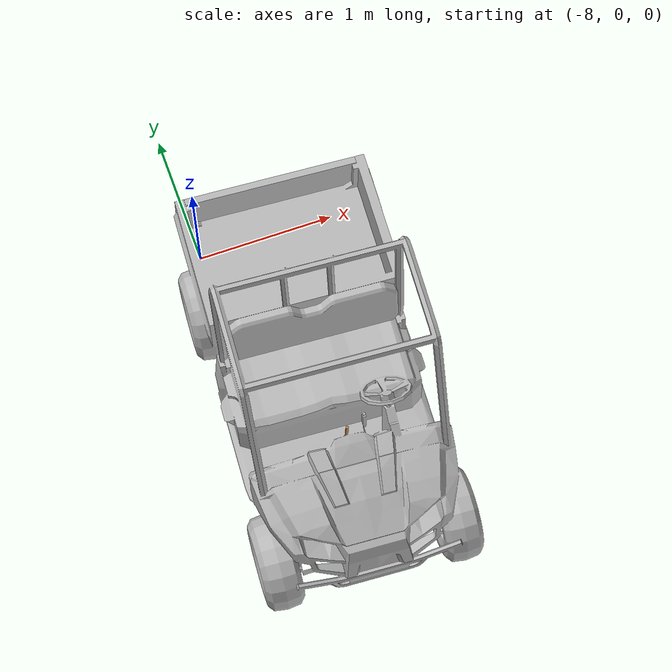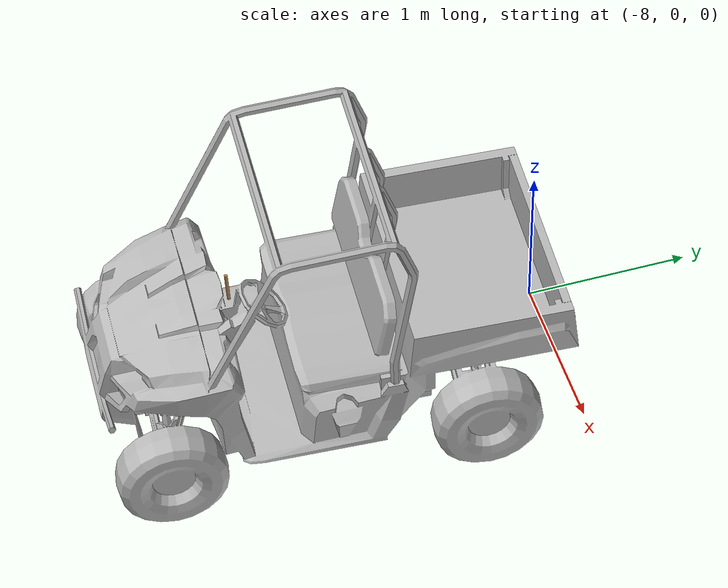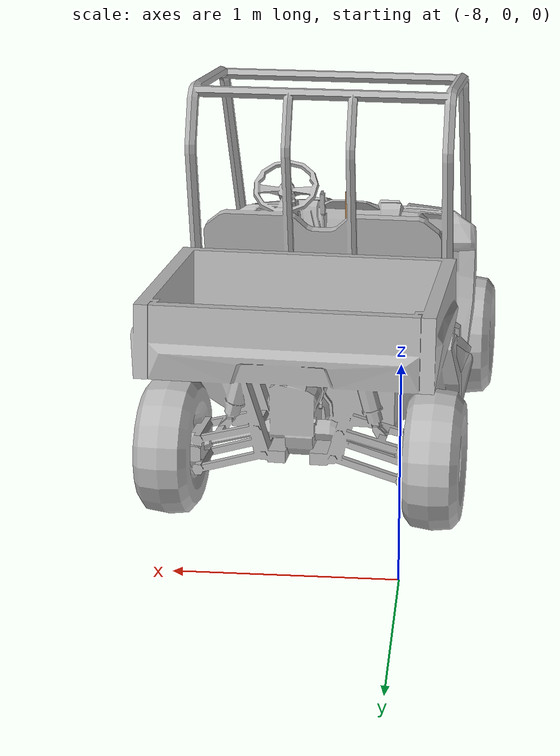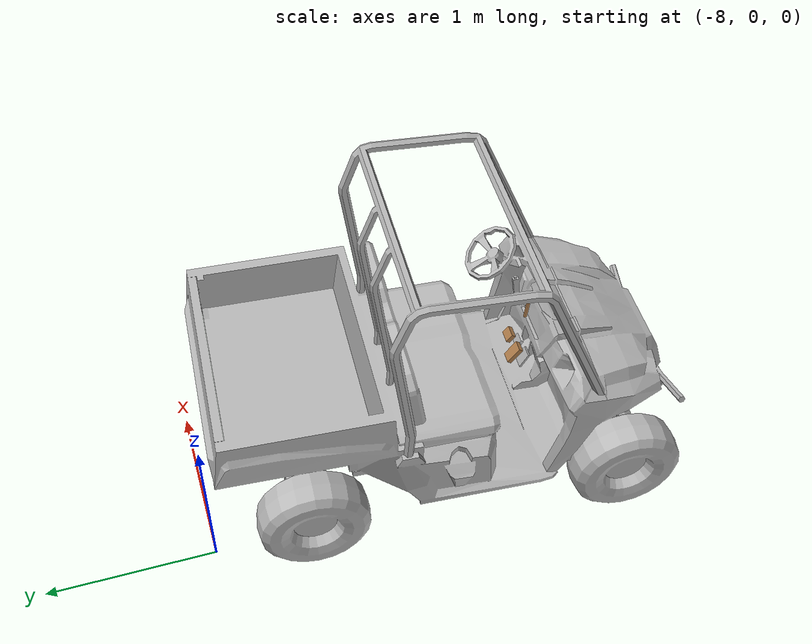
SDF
<sdf version="1.6">
 <world name="default">
  <model name="polaris_ranger_ev_clone_0">
   <static>true</static>
   <link name="chassis">
    <inertial>
     <mass>720</mass>
     <inertia><ixx>140</ixx><ixy>0</ixy><iyy>550</iyy><ixz>0</ixz><iyz>0</iyz><izz>550</izz></inertia>
    </inertial>
    <visual name="visual">
     <pose>0 0 0 0 0 -1.5708</pose>
     <geometry><mesh><uri>model://polaris_ranger_ev/meshes/polaris.dae</uri><scale>1 1 1</scale></mesh></geometry>
     <material>
      <script>
       <uri>model://polaris_ranger_ev/materials/scripts</uri>
       <uri>model://polaris_ranger_ev/materials/textures</uri>
       <name>Polaris/Diffuse</name>
      </script>
     </material>
    </visual>
    <collision name="chassis_bottom">
     <pose>0 0 0.35 0 -0 0</pose>
     <geometry><box><size>2 1 0.1</size></box></geometry>
    </collision>
    <collision name="cargo_bottom">
     <pose>-0.9 0 0.9 0 -0 0</pose>
     <geometry><box><size>0.9 1.2 0.01</size></box></geometry>
    </collision>
    <collision name="cargo_front">
     <pose>-0.45 0 1.025 0 -0 0</pose>
     <geometry><box><size>0.05 1.2 0.25</size></box></geometry>
    </collision>
    <collision name="cargo_back">
     <pose>-1.35 0 1.025 0 -0 0</pose>
     <geometry><box><size>0.05 1.2 0.25</size></box></geometry>
    </collision>
    <collision name="cargo_left">
     <pose>-0.9 0.6 1.025 0 -0 0</pose>
     <geometry><box><size>0.9 0.05 0.25</size></box></geometry>
    </collision>
    <collision name="cargo_right">
     <pose>-0.9 -0.6 1.025 0 -0 0</pose>
     <geometry><box><size>0.9 0.05 0.25</size></box></geometry>
    </collision>
    <collision name="seat">
     <pose>-0.1 0 0.625 0 -0 0</pose>
     <geometry><box><size>0.6 1 0.65</size></box></geometry>
    </collision>
    <collision name="seat_back">
     <pose>-0.3 0 1.125 0 -0.2 0</pose>
     <geometry><box><size>0.1 1 0.4</size></box></geometry>
    </collision>
    <collision name="engine">
     <pose>0.95 0 0.7 0 -0 0</pose>
     <geometry><box><size>0.58 1 0.8</size></box></geometry>
    </collision>
    <collision name="steering_column">
     <pose>0.525 0.3 1.025 0 -0.8 0</pose>
     <geometry><cylinder><radius>0.05</radius><length>0.45</length></cylinder></geometry>
    </collision>
   </link>
   <link name="rear_right_wheel">
    <pose>-0.85 -0.6 0.32 1.5708 -0 0</pose>
    <inertial>
     <mass>12</mass>
     <inertia><ixx>0.5</ixx><ixy>0</ixy><iyy>0.5</iyy><ixz>0</ixz><iyz>0</iyz><izz>1</izz></inertia>
    </inertial>
    <collision name="collision">
     <geometry><cylinder><radius>0.32</radius><length>0.23</length></cylinder></geometry>
     <surface>
      <friction><ode><mu>100000</mu><mu2>100000</mu2><slip1>0</slip1><slip2>0</slip2></ode></friction>
     </surface>
    </collision>
   </link>
   <joint name="rear_right_wheel_joint" type="revolute">
    <pose>0 0 -0.1 0 -0 0</pose>
    <child>rear_right_wheel</child>
    <parent>chassis</parent>
    <axis>
     <xyz>0 1 0</xyz>
     <use_parent_model_frame>1</use_parent_model_frame>
     <limit><lower>-1e+16</lower><upper>1e+16</upper></limit>
     <dynamics><spring_reference>0</spring_reference><spring_stiffness>0</spring_stiffness></dynamics>
    </axis>
    <physics><ode><limit><cfm>0</cfm><erp>0.9</erp></limit></ode></physics>
   </joint>
   <link name="rear_left_wheel">
    <pose>-0.85 0.6 0.32 1.5708 -0 0</pose>
    <inertial>
     <mass>12</mass>
     <inertia><ixx>0.5</ixx><ixy>0</ixy><iyy>0.5</iyy><ixz>0</ixz><iyz>0</iyz><izz>1</izz></inertia>
    </inertial>
    <collision name="collision">
     <geometry><cylinder><radius>0.32</radius><length>0.23</length></cylinder></geometry>
     <surface>
      <friction><ode><mu>100000</mu><mu2>100000</mu2><slip1>0</slip1><slip2>0</slip2></ode></friction>
     </surface>
    </collision>
   </link>
   <joint name="rear_left_wheel_joint" type="revolute">
    <child>rear_left_wheel</child>
    <parent>chassis</parent>
    <axis>
     <xyz>0 1 0</xyz>
     <use_parent_model_frame>1</use_parent_model_frame>
     <limit><lower>-1e+16</lower><upper>1e+16</upper></limit>
     <dynamics><spring_reference>0</spring_reference><spring_stiffness>0</spring_stiffness></dynamics>
    </axis>
    <physics><ode><limit><cfm>0</cfm><erp>0.9</erp></limit></ode></physics>
   </joint>
   <link name="front_right_wheel">
    <pose>1.03 -0.6 0.32 1.5708 -0 0</pose>
    <inertial>
     <mass>12</mass>
     <inertia><ixx>0.5</ixx><ixy>0</ixy><iyy>0.5</iyy><ixz>0</ixz><iyz>0</iyz><izz>1</izz></inertia>
    </inertial>
    <collision name="collision">
     <geometry><cylinder><radius>0.32</radius><length>0.23</length></cylinder></geometry>
     <surface>
      <friction><ode><mu>100000</mu><mu2>100000</mu2><slip1>0</slip1><slip2>0</slip2></ode></friction>
     </surface>
    </collision>
   </link>
   <link name="front_right_wheel_steering_block">
    <pose>1.03 -0.5 0.32 1.5708 -0 0</pose>
    <inertial>
     <mass>1</mass>
     <inertia><ixx>1</ixx><ixy>0</ixy><iyy>1</iyy><ixz>0</ixz><iyz>0</iyz><izz>1</izz></inertia>
    </inertial>
    <collision name="collision">
     <geometry><cylinder><radius>0.05</radius><length>0.01</length></cylinder></geometry>
    </collision>
   </link>
   <joint name="front_right_steering_joint" type="revolute">
    <child>front_right_wheel_steering_block</child>
    <parent>chassis</parent>
    <axis>
     <xyz>0 0 1</xyz>
     <limit><lower>-1</lower><upper>1</upper></limit>
     <use_parent_model_frame>1</use_parent_model_frame>
     <dynamics><spring_reference>0</spring_reference><spring_stiffness>0</spring_stiffness></dynamics>
    </axis>
    <physics><ode><limit><cfm>0</cfm><erp>0.9</erp></limit></ode></physics>
   </joint>
   <joint name="front_right_wheel_joint" type="revolute">
    <child>front_right_wheel</child>
    <parent>front_right_wheel_steering_block</parent>
    <axis>
     <xyz>0 1 0</xyz>
     <use_parent_model_frame>1</use_parent_model_frame>
     <limit><lower>-1e+16</lower><upper>1e+16</upper></limit>
     <dynamics><spring_reference>0</spring_reference><spring_stiffness>0</spring_stiffness></dynamics>
    </axis>
    <physics><ode><limit><cfm>0</cfm><erp>0.9</erp></limit></ode></physics>
   </joint>
   <link name="front_left_wheel">
    <pose>1.03 0.6 0.32 1.5708 -0 0</pose>
    <inertial>
     <mass>12</mass>
     <inertia><ixx>0.5</ixx><ixy>0</ixy><iyy>0.5</iyy><ixz>0</ixz><iyz>0</iyz><izz>1</izz></inertia>
    </inertial>
    <collision name="collision">
     <geometry><cylinder><radius>0.32</radius><length>0.23</length></cylinder></geometry>
     <surface>
      <friction><ode><mu>100000</mu><mu2>100000</mu2><slip1>0</slip1><slip2>0</slip2></ode></friction>
     </surface>
    </collision>
   </link>
   <link name="front_left_wheel_steering_block">
    <pose>1.03 0.5 0.32 1.5708 -0 0</pose>
    <inertial>
     <mass>1</mass>
     <inertia><ixx>1</ixx><ixy>0</ixy><iyy>1</iyy><ixz>0</ixz><iyz>0</iyz><izz>1</izz></inertia>
    </inertial>
    <collision name="collision">
     <geometry><cylinder><radius>0.05</radius><length>0.01</length></cylinder></geometry>
    </collision>
   </link>
   <joint name="front_left_steering_joint" type="revolute">
    <child>front_left_wheel_steering_block</child>
    <parent>chassis</parent>
    <axis>
     <xyz>0 0 1</xyz>
     <limit><lower>-1</lower><upper>1</upper></limit>
     <use_parent_model_frame>1</use_parent_model_frame>
     <dynamics><spring_reference>0</spring_reference><spring_stiffness>0</spring_stiffness></dynamics>
    </axis>
    <physics><ode><limit><cfm>0</cfm><erp>0.9</erp></limit></ode></physics>
   </joint>
   <joint name="front_left_wheel_joint" type="revolute">
    <child>front_left_wheel</child>
    <parent>front_left_wheel_steering_block</parent>
    <axis>
     <xyz>0 1 0</xyz>
     <use_parent_model_frame>1</use_parent_model_frame>
     <limit><lower>-1e+16</lower><upper>1e+16</upper></limit>
     <dynamics><spring_reference>0</spring_reference><spring_stiffness>0</spring_stiffness></dynamics>
    </axis>
    <physics><ode><limit><cfm>0</cfm><erp>0.9</erp></limit></ode></physics>
   </joint>
   <link name="gas_pedal">
    <pose>0.53 0.14 0.56 0 -1 0</pose>
    <gravity>0</gravity>
    <inertial>
     <mass>0.1</mass>
     <inertia><ixx>0.01</ixx><ixy>0</ixy><ixz>0</ixz><iyy>0.01</iyy><iyz>0</iyz><izz>0.01</izz></inertia>
    </inertial>
    <collision name="gas_pedal_collision"><geometry><box><size>0.12 0.07 0.03</size></box></geometry></collision>
    <visual name="gas_pedal_visual">
     <geometry><box><size>0.12 0.07 0.03</size></box></geometry>
     <material>
      <script><uri>file://media/materials/scripts/gazebo.material</uri><name>Gazebo/Wood</name></script>
      <ambient>0.2 0.2 0.2 1</ambient>
      <diffuse>0.2 0.2 0.2 1</diffuse>
      <specular>0.2 0.2 0.2 1</specular>
      <emissive>0.5 0.5 0.5 1</emissive>
     </material>
    </visual>
   </link>
   <link name="brake_pedal">
    <gravity>0</gravity>
    <pose>0.54 0.27 0.58 0 -1 0</pose>
    <inertial>
     <mass>0.1</mass>
     <inertia><ixx>0.01</ixx><ixy>0</ixy><ixz>0</ixz><iyy>0.01</iyy><iyz>0</iyz><izz>0.01</izz></inertia>
    </inertial>
    <collision name="brake_pedal_collision">
     <geometry><box><size>0.06 0.08 0.03</size></box></geometry>
    </collision>
    <visual name="brake_pedal_visual">
     <geometry><box><size>0.06 0.08 0.03</size></box></geometry>
     <material>
      <script><uri>file://media/materials/scripts/gazebo.material</uri><name>Gazebo/Wood</name></script>
      <ambient>0.2 0.2 0.2 1</ambient>
      <diffuse>0.2 0.2 0.2 1</diffuse>
      <specular>0.2 0.2 0.2 1</specular>
      <emissive>0.5 0.5 0.5 1</emissive>
     </material>
    </visual>
   </link>
   <link name="steering_wheel">
    <pose>0.37 0.3 1.2 0 -0.8 0</pose>
    <inertial>
     <mass>1</mass>
     <inertia><ixx>0.1</ixx><ixy>0</ixy><ixz>0</ixz><iyy>0.1</iyy><iyz>0</iyz><izz>1</izz></inertia>
    </inertial>
    <collision name="steering_wheel_post_left">
     <pose>0 0.08 0 1.5708 -0 0</pose>
     <geometry><cylinder><radius>0.02</radius><length>0.15</length></cylinder></geometry>
    </collision>
    <collision name="steering_wheel_post_right">
     <pose>0 -0.08 0 1.5708 -0 0</pose>
     <geometry><cylinder><radius>0.02</radius><length>0.15</length></cylinder></geometry>
    </collision>
    <collision name="steering_wheel_post_middle">
     <pose>-0.08 0 0 3.14159 1.57079 3.14159</pose>
     <geometry><cylinder><radius>0.02</radius><length>0.15</length></cylinder></geometry>
    </collision>
    <collision name="collision00">
     <pose>0.15 0 0 3.14159 1.57079 -1.57079</pose>
     <geometry><cylinder><length>0.105066</length><radius>0.01</radius></cylinder></geometry>
    </collision>
    <collision name="collision01">
     <pose>0.121353 0.088168 0 3.14159 1.57079 -0.942483</pose>
     <geometry><cylinder><length>0.105066</length><radius>0.01</radius></cylinder></geometry>
    </collision>
    <collision name="collision02">
     <pose>0.046353 0.142658 0 3.14159 1.57079 -0.314163</pose>
     <geometry><cylinder><length>0.105066</length><radius>0.01</radius></cylinder></geometry>
    </collision>
    <collision name="collision03">
     <pose>-0.046353 0.142658 0 3.14159 1.57079 0.314163</pose>
     <geometry><cylinder><length>0.105066</length><radius>0.01</radius></cylinder></geometry>
    </collision>
    <collision name="collision04">
     <pose>-0.121353 0.088168 0 -3.14159 1.57079 0.942483</pose>
     <geometry><cylinder><length>0.105066</length><radius>0.01</radius></cylinder></geometry>
    </collision>
    <collision name="collision05">
     <pose>-0.15 0 0 -3.14159 1.57079 1.57079</pose>
     <geometry><cylinder><length>0.105066</length><radius>0.01</radius></cylinder></geometry>
    </collision>
    <collision name="collision06">
     <pose>-0.121353 -0.088168 0 3.14159 1.57079 2.19912</pose>
     <geometry><cylinder><length>0.105066</length><radius>0.01</radius></cylinder></geometry>
    </collision>
    <collision name="collision07">
     <pose>-0.046353 -0.142658 0 -3.14159 1.57079 2.82743</pose>
     <geometry><cylinder><length>0.105066</length><radius>0.01</radius></cylinder></geometry>
    </collision>
    <collision name="collision08">
     <pose>0.046353 -0.142658 0 3.14159 1.57079 -2.82743</pose>
     <geometry><cylinder><length>0.105066</length><radius>0.01</radius></cylinder></geometry>
    </collision>
    <collision name="collision09">
     <pose>0.121353 -0.088168 0 -3.14159 1.57079 -2.19911</pose>
     <geometry><cylinder><length>0.105066</length><radius>0.01</radius></cylinder></geometry>
    </collision>
   </link>
   <link name="hand_brake">
    <pose>0.5 0 1.05 3.14159 -0.058407 3.14159</pose>
    <inertial>
     <mass>1</mass>
     <pose>0 0 -0.15 0 -0 0</pose>
     <inertia><ixx>0.1</ixx><ixy>0</ixy><ixz>0</ixz><iyy>0.1</iyy><iyz>0</iyz><izz>1</izz></inertia>
    </inertial>
    <collision name="hand_brake_collision">
     <pose>0 0 -0.1 0 -0 0</pose>
     <geometry><cylinder><radius>0.01</radius><length>0.2</length></cylinder></geometry>
    </collision>
    <visual name="hand_brake_visual">
     <pose>0 0 -0.1 0 -0 0</pose>
     <geometry><cylinder><radius>0.01</radius><length>0.2</length></cylinder></geometry>
     <material>
      <script><uri>file://media/materials/scripts/gazebo.material</uri><name>Gazebo/Wood</name></script>
     </material>
    </visual>
   </link>
   <joint name="gas_joint" type="prismatic">
    <parent>chassis</parent>
    <child>gas_pedal</child>
    <axis>
     <xyz>1 0 -1</xyz>
     <limit><lower>0</lower><upper>0.15</upper></limit>
     <use_parent_model_frame>1</use_parent_model_frame>
     <dynamics><spring_reference>0</spring_reference><spring_stiffness>0</spring_stiffness></dynamics>
    </axis>
   </joint>
   <joint name="brake_joint" type="prismatic">
    <parent>chassis</parent>
    <child>brake_pedal</child>
    <axis>
     <xyz>1 0 -0.6</xyz>
     <limit><lower>0</lower><upper>0.15</upper></limit>
     <use_parent_model_frame>1</use_parent_model_frame>
     <dynamics><spring_reference>0</spring_reference><spring_stiffness>0</spring_stiffness></dynamics>
    </axis>
   </joint>
   <joint name="steering_joint" type="revolute">
    <pose>0 0 0 1.5708 -0.8 0</pose>
    <parent>chassis</parent>
    <child>steering_wheel</child>
    <axis>
     <xyz>-1 0 1.023</xyz>
     <limit><lower>-7.853</lower><upper>7.853</upper></limit>
     <use_parent_model_frame>1</use_parent_model_frame>
     <dynamics><spring_reference>0</spring_reference><spring_stiffness>0</spring_stiffness></dynamics>
    </axis>
   </joint>
   <joint name="hand_brake_joint" type="revolute">
    <parent>chassis</parent>
    <child>hand_brake</child>
    <axis>
     <xyz>0 -1 0</xyz>
     <limit><lower>0</lower><upper>0.6</upper></limit>
     <use_parent_model_frame>1</use_parent_model_frame>
     <dynamics><spring_reference>0</spring_reference><spring_stiffness>0</spring_stiffness></dynamics>
    </axis>
   </joint>
   <pose>-7.56961 -1.48357 -4.3e-05 -0 4.9e-05 -1.63466</pose>
  </model>
 </world>
</sdf>
